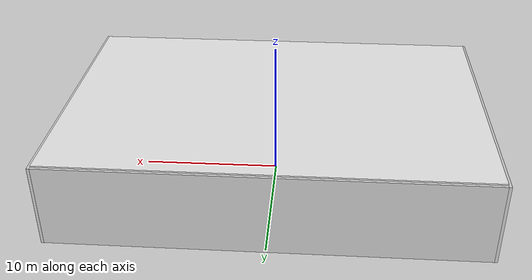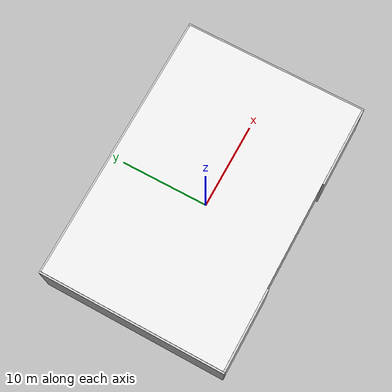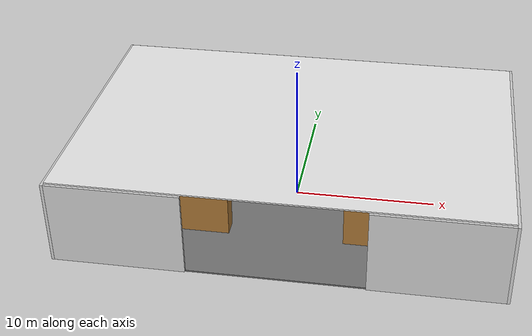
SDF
<?xml version="1.0" ?>
<sdf version="1.9">
  <world name="warehouse">

    <!-- ======== Plugins système (Gazebo Harmonic) ======== -->
    <plugin filename="gz-sim-physics-system"
            name="gz::sim::systems::Physics"/>
    <plugin filename="gz-sim-user-commands-system"
            name="gz::sim::systems::UserCommands"/>
    <plugin filename="gz-sim-scene-broadcaster-system"
            name="gz::sim::systems::SceneBroadcaster"/>
    <plugin filename="gz-sim-imu-system"
            name="gz::sim::systems::Imu"/>
    <plugin filename="gz-sim-sensors-system"
            name="gz::sim::systems::Sensors">
      <render_engine>ogre2</render_engine>
    </plugin>
    <plugin filename="gz-sim-contact-system"
            name="gz::sim::systems::Contact"/>

    <!-- ======== Physique ======== -->
    <physics name="1ms" type="ignore">
      <max_step_size>0.001</max_step_size>
      <real_time_factor>1.0</real_time_factor>
    </physics>

    <!-- ======== Scène ======== -->
    <scene>
      <ambient>0.3 0.3 0.3 1</ambient>
      <background>0.6 0.7 0.8 1</background>
    </scene>

    <!-- ======== Soleil (atténué pour intérieur) ======== -->
    <light type="directional" name="sun">
      <cast_shadows>true</cast_shadows>
      <pose>0 0 20 0 0 0</pose>
      <diffuse>0.5 0.5 0.5 1</diffuse>
      <specular>0.1 0.1 0.1 1</specular>
      <direction>-0.3 0.2 -0.9</direction>
    </light>

    <!-- ======== Éclairage intérieur (4 points) ======== -->
    <light type="point" name="light_nw">
      <pose>-7 5 5.5 0 0 0</pose>
      <diffuse>0.9 0.9 0.85 1</diffuse>
      <specular>0.1 0.1 0.1 1</specular>
      <attenuation>
        <range>20</range>
        <constant>0.3</constant>
        <linear>0.01</linear>
        <quadratic>0.001</quadratic>
      </attenuation>
    </light>
    <light type="point" name="light_ne">
      <pose>7 5 5.5 0 0 0</pose>
      <diffuse>0.9 0.9 0.85 1</diffuse>
      <specular>0.1 0.1 0.1 1</specular>
      <attenuation>
        <range>20</range>
        <constant>0.3</constant>
        <linear>0.01</linear>
        <quadratic>0.001</quadratic>
      </attenuation>
    </light>
    <light type="point" name="light_sw">
      <pose>-7 -5 5.5 0 0 0</pose>
      <diffuse>0.9 0.9 0.85 1</diffuse>
      <specular>0.1 0.1 0.1 1</specular>
      <attenuation>
        <range>20</range>
        <constant>0.3</constant>
        <linear>0.01</linear>
        <quadratic>0.001</quadratic>
      </attenuation>
    </light>
    <light type="point" name="light_se">
      <pose>7 -5 5.5 0 0 0</pose>
      <diffuse>0.9 0.9 0.85 1</diffuse>
      <specular>0.1 0.1 0.1 1</specular>
      <attenuation>
        <range>20</range>
        <constant>0.3</constant>
        <linear>0.01</linear>
        <quadratic>0.001</quadratic>
      </attenuation>
    </light>

    <!--                         SOL                                  -->
    <model name="floor">
      <static>true</static>
      <pose>0 0 -0.05 0 0 0</pose>
      <link name="link">
        <collision name="collision">
          <geometry><box><size>30 20 0.1</size></box></geometry>
        </collision>
        <visual name="visual">
          <geometry><box><size>30 20 0.1</size></box></geometry>
          <material>
            <ambient>0.35 0.35 0.35 1</ambient>
            <diffuse>0.45 0.45 0.45 1</diffuse>
          </material>
        </visual>
      </link>
    </model>

    <!--                         MURS                                 -->

    <!-- Mur Nord (plein) -->
    <model name="wall_north">
      <static>true</static>
      <pose>0 10.1 3 0 0 0</pose>
      <link name="link">
        <collision name="collision">
          <geometry><box><size>30 0.2 6</size></box></geometry>
        </collision>
        <visual name="visual">
          <geometry><box><size>30 0.2 6</size></box></geometry>
          <material>
            <ambient>0.7 0.7 0.7 1</ambient>
            <diffuse>0.8 0.8 0.8 1</diffuse>
          </material>
        </visual>
      </link>
    </model>

    <!-- Mur Sud — segment gauche (porte de 8m au centre) -->
    <model name="wall_south_left">
      <static>true</static>
      <pose>-10.5 -10.1 3 0 0 0</pose>
      <link name="link">
        <collision name="collision">
          <geometry><box><size>9 0.2 6</size></box></geometry>
        </collision>
        <visual name="visual">
          <geometry><box><size>9 0.2 6</size></box></geometry>
          <material>
            <ambient>0.7 0.7 0.7 1</ambient>
            <diffuse>0.8 0.8 0.8 1</diffuse>
          </material>
        </visual>
      </link>
    </model>

    <!-- Mur Sud — segment droit -->
    <model name="wall_south_right">
      <static>true</static>
      <pose>10.5 -10.1 3 0 0 0</pose>
      <link name="link">
        <collision name="collision">
          <geometry><box><size>9 0.2 6</size></box></geometry>
        </collision>
        <visual name="visual">
          <geometry><box><size>9 0.2 6</size></box></geometry>
          <material>
            <ambient>0.7 0.7 0.7 1</ambient>
            <diffuse>0.8 0.8 0.8 1</diffuse>
          </material>
        </visual>
      </link>
    </model>

    <!-- Mur Est -->
    <model name="wall_east">
      <static>true</static>
      <pose>15.1 0 3 0 0 0</pose>
      <link name="link">
        <collision name="collision">
          <geometry><box><size>0.2 20.4 6</size></box></geometry>
        </collision>
        <visual name="visual">
          <geometry><box><size>0.2 20.4 6</size></box></geometry>
          <material>
            <ambient>0.7 0.7 0.7 1</ambient>
            <diffuse>0.8 0.8 0.8 1</diffuse>
          </material>
        </visual>
      </link>
    </model>

    <!-- Mur Ouest -->
    <model name="wall_west">
      <static>true</static>
      <pose>-15.1 0 3 0 0 0</pose>
      <link name="link">
        <collision name="collision">
          <geometry><box><size>0.2 20.4 6</size></box></geometry>
        </collision>
        <visual name="visual">
          <geometry><box><size>0.2 20.4 6</size></box></geometry>
          <material>
            <ambient>0.7 0.7 0.7 1</ambient>
            <diffuse>0.8 0.8 0.8 1</diffuse>
          </material>
        </visual>
      </link>
    </model>

    <!--                        PLAFOND                               -->
    <model name="ceiling">
      <static>true</static>
      <pose>0 0 6.05 0 0 0</pose>
      <link name="link">
        <collision name="collision">
          <geometry><box><size>30 20 0.1</size></box></geometry>
        </collision>
        <visual name="visual">
          <geometry><box><size>30 20 0.1</size></box></geometry>
          <material>
            <ambient>0.85 0.85 0.85 1</ambient>
            <diffuse>0.9 0.9 0.9 1</diffuse>
          </material>
        </visual>
      </link>
    </model>

    <!--                   ÉTAGÈRES / RACKS                           -->
    <!--  4 racks (6m x 1.2m x 3m) — hauteur max 3m                  -->
    <!--  Zone de vol libre au-dessus (3m → 6m)                       -->

    <!-- Rack Nord-Ouest -->
    <model name="shelf_nw">
      <static>true</static>
      <pose>-7 5 1.5 0 0 0</pose>
      <link name="link">
        <collision name="collision">
          <geometry><box><size>6 1.2 3</size></box></geometry>
        </collision>
        <visual name="visual">
          <geometry><box><size>6 1.2 3</size></box></geometry>
          <material>
            <ambient>0.55 0.35 0.15 1</ambient>
            <diffuse>0.65 0.45 0.2 1</diffuse>
          </material>
        </visual>
      </link>
    </model>

    <!-- Rack Nord-Est -->
    <model name="shelf_ne">
      <static>true</static>
      <pose>7 5 1.5 0 0 0</pose>
      <link name="link">
        <collision name="collision">
          <geometry><box><size>6 1.2 3</size></box></geometry>
        </collision>
        <visual name="visual">
          <geometry><box><size>6 1.2 3</size></box></geometry>
          <material>
            <ambient>0.55 0.35 0.15 1</ambient>
            <diffuse>0.65 0.45 0.2 1</diffuse>
          </material>
        </visual>
      </link>
    </model>

    <!-- Rack Sud-Ouest -->
    <model name="shelf_sw">
      <static>true</static>
      <pose>-7 -5 1.5 0 0 0</pose>
      <link name="link">
        <collision name="collision">
          <geometry><box><size>6 1.2 3</size></box></geometry>
        </collision>
        <visual name="visual">
          <geometry><box><size>6 1.2 3</size></box></geometry>
          <material>
            <ambient>0.55 0.35 0.15 1</ambient>
            <diffuse>0.65 0.45 0.2 1</diffuse>
          </material>
        </visual>
      </link>
    </model>

    <!-- Rack Sud-Est -->
    <model name="shelf_se">
      <static>true</static>
      <pose>7 -5 1.5 0 0 0</pose>
      <link name="link">
        <collision name="collision">
          <geometry><box><size>6 1.2 3</size></box></geometry>
        </collision>
        <visual name="visual">
          <geometry><box><size>6 1.2 3</size></box></geometry>
          <material>
            <ambient>0.55 0.35 0.15 1</ambient>
            <diffuse>0.65 0.45 0.2 1</diffuse>
          </material>
        </visual>
      </link>
    </model>

    <!--                   CAISSES / PALETTES                         -->

    <model name="crate_1">
      <static>true</static>
      <pose>-12 -7 0.5 0 0 0</pose>
      <link name="link">
        <collision name="collision">
          <geometry><box><size>1 1 1</size></box></geometry>
        </collision>
        <visual name="visual">
          <geometry><box><size>1 1 1</size></box></geometry>
          <material>
            <ambient>0.6 0.5 0.2 1</ambient>
            <diffuse>0.7 0.6 0.3 1</diffuse>
          </material>
        </visual>
      </link>
    </model>

    <model name="crate_2">
      <static>true</static>
      <pose>12 7 0.4 0 0 0.3</pose>
      <link name="link">
        <collision name="collision">
          <geometry><box><size>1.2 0.8 0.8</size></box></geometry>
        </collision>
        <visual name="visual">
          <geometry><box><size>1.2 0.8 0.8</size></box></geometry>
          <material>
            <ambient>0.6 0.5 0.2 1</ambient>
            <diffuse>0.7 0.6 0.3 1</diffuse>
          </material>
        </visual>
      </link>
    </model>

    <model name="crate_3">
      <static>true</static>
      <pose>-12 7 0.75 0 0 0</pose>
      <link name="link">
        <collision name="collision">
          <geometry><box><size>1 1 1.5</size></box></geometry>
        </collision>
        <visual name="visual">
          <geometry><box><size>1 1 1.5</size></box></geometry>
          <material>
            <ambient>0.5 0.5 0.55 1</ambient>
            <diffuse>0.6 0.6 0.65 1</diffuse>
          </material>
        </visual>
      </link>
    </model>

    <model name="pallet_stack">
      <static>true</static>
      <pose>11 -7 0.6 0 0 0.1</pose>
      <link name="link">
        <collision name="collision">
          <geometry><box><size>1.2 1.2 1.2</size></box></geometry>
        </collision>
        <visual name="visual">
          <geometry><box><size>1.2 1.2 1.2</size></box></geometry>
          <material>
            <ambient>0.45 0.35 0.2 1</ambient>
            <diffuse>0.55 0.45 0.25 1</diffuse>
          </material>
        </visual>
      </link>
    </model>

  </world>
</sdf>
